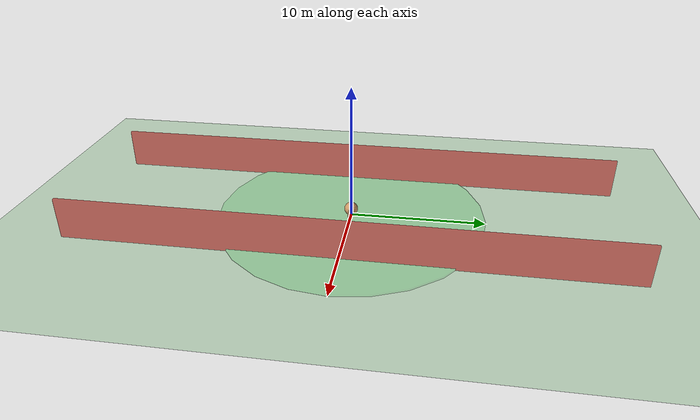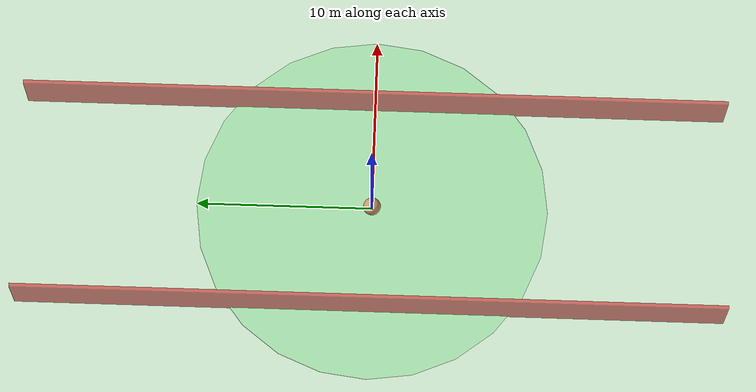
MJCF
<mujoco>
    <compiler angle="degree" coordinate="local" inertiafromgeom="true"/>
    <option integrator="RK4" timestep="0.02"/>
    <default>
        <joint armature="0" damping="0" limited="false"/>
        <geom conaffinity="0" condim="3" density="100" friction="1 0.5 0.5" margin="0" rgba="0.8 0.6 0.4 1"/>
    </default>
    <asset>
        <texture builtin="gradient" height="100" rgb1="1 1 1" rgb2="0 0 0" type="skybox" width="100"/>
        <texture builtin="flat" height="1278" mark="cross" markrgb="1 1 1" name="texgeom" random="0.01" rgb1="0.8 0.6 0.4" rgb2="0.8 0.6 0.4" type="cube" width="127"/>
        <texture builtin="checker" height="100" name="texplane" rgb1="0 0 0" rgb2="0.8 0.8 0.8" type="2d" width="100"/>
        <material name="MatPlane" reflectance="0.5" shininess="1" specular="1" texrepeat="30 30" texture="texplane"/>
        <material name="geom" texture="texgeom" texuniform="true"/>
    </asset>
    <worldbody>
        <light cutoff="100" diffuse="1 1 1" dir="-0 0 -1.3" directional="true" exponent="1" pos="0 0 1.3" specular=".1 .1 .1"/>
        <geom name="circle" type="cylinder" size="10 0.1" pos="0 0 0" contype="0" conaffinity="0" rgba="0.1 0.8 0.2 0.2"/>
        <geom name="boundary_plus" pos="6 0 1" size="0.1 20 2" type="box" material="" contype="0" conaffinity="0" rgba="0.8 0.1 0.1 0.6"/>
        <geom name="boundary_neg" pos="-6 0 1" size="0.1 20 2" type="box" material="" contype="0" conaffinity="0" rgba="0.8 0.1 0.1 0.6"/>
        <geom conaffinity="1" condim="3" material="MatPlane" name="floor" pos="0 0 0" rgba="0.8 0.9 0.8 1" size="40 40 40" type="plane"/>
        <camera name="track" mode="fixed" pos="0 -18 15" fovy="50" xyaxes="1 0 0 0 1 1"/>
        <body name="torso" pos="0 0 0">
            <geom name="pointbody" pos="0 0 0.5" size="0.5" type="sphere"/>
            <geom name="pointarrow" pos="0.6 0 0.5" size="0.5 0.1 0.1" type="box"/>
            <joint axis="1 0 0" name="ballx" pos="0 0 0" type="slide"/>
            <joint axis="0 1 0" name="bally" pos="0 0 0" type="slide"/>
            <joint axis="0 0 1" limited="false" name="rot" pos="0 0 0" type="hinge"/>
        </body>
    </worldbody>
    <actuator>
        <!-- Those are just dummy actuators for providing ranges -->
        <motor ctrllimited="true" ctrlrange="-0.25 0.25" joint="ballx"/>
        <motor ctrllimited="true" ctrlrange="-0.25 0.25" joint="rot"/>
    </actuator>
</mujoco>
